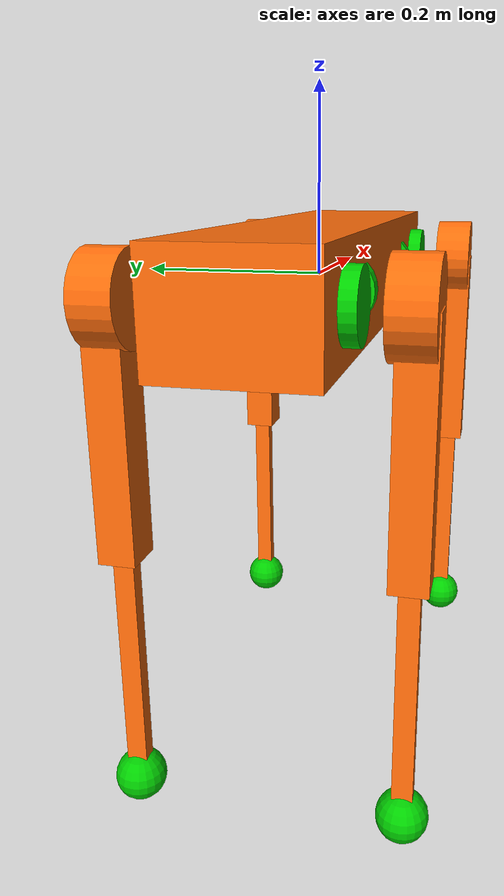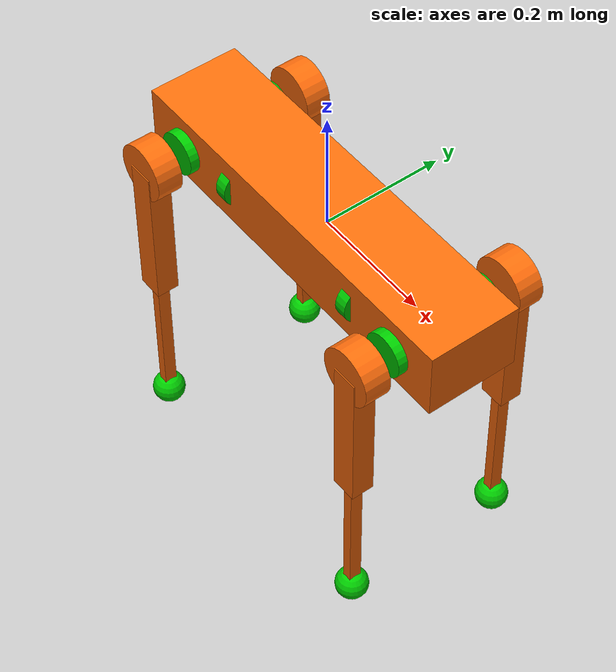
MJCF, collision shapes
<mujoco model="aliengo">
  <compiler angle="radian" meshdir="/home/george/code/umi-on-legs/mani-centric-wbc/resources/robots/aliengo_description/meshes/"/>

  <asset>
    <mesh name="trunk" file="trunk.stl"/>
    <mesh name="hip" file="hip.stl"/>
    <mesh name="thigh_mirror" file="thigh_mirror.stl"/>
    <mesh name="calf" file="calf.stl"/>
    <mesh name="thigh" file="thigh.stl"/>
  </asset>

  <worldbody>
    <geom size="0.0005 0.0005 0.0005" type="box" contype="0" conaffinity="0" group="1" density="0"/>
    <geom type="mesh" contype="0" conaffinity="0" group="1" density="0" rgba="1 0.423529 0.0392157 1" mesh="trunk"/>
    <geom size="0.3235 0.075 0.056" type="box" rgba="1 0.423529 0.0392157 1"/>
    <geom size="0.0005 0.0005 0.0005" type="box" contype="0" conaffinity="0" group="1" density="0" rgba="0.8 0 0 1"/>
    <geom size="0.0005 0.0005 0.0005" type="box" rgba="0.8 0 0 1"/>
    <geom size="0.035 0.01" pos="0.139985 -0.051 0" quat="0.707107 0 0.707107 0" type="cylinder" contype="0" conaffinity="0" group="1" density="0" rgba="0 0.8 0 1"/>
    <geom size="0.035 0.01" pos="0.139985 -0.051 0" quat="0.707107 0 0.707107 0" type="cylinder" rgba="0 0.8 0 1"/>
    <geom size="0.035 0.01" pos="0.139985 0.051 0" quat="0.707107 0 0.707107 0" type="cylinder" contype="0" conaffinity="0" group="1" density="0" rgba="0 0.8 0 1"/>
    <geom size="0.035 0.01" pos="0.139985 0.051 0" quat="0.707107 0 0.707107 0" type="cylinder" rgba="0 0.8 0 1"/>
    <geom size="0.035 0.01" pos="-0.139985 -0.051 0" quat="0.707107 0 0.707107 0" type="cylinder" contype="0" conaffinity="0" group="1" density="0" rgba="0 0.8 0 1"/>
    <geom size="0.035 0.01" pos="-0.139985 -0.051 0" quat="0.707107 0 0.707107 0" type="cylinder" rgba="0 0.8 0 1"/>
    <geom size="0.035 0.01" pos="-0.139985 0.051 0" quat="0.707107 0 0.707107 0" type="cylinder" contype="0" conaffinity="0" group="1" density="0" rgba="0 0.8 0 1"/>
    <geom size="0.035 0.01" pos="-0.139985 0.051 0" quat="0.707107 0 0.707107 0" type="cylinder" rgba="0 0.8 0 1"/>
    <body name="FR_hip" pos="0.2407 -0.051 0">
      <inertial pos="-0.0206763 -0.0161444 -1.39762e-05" quat="0.58092 0.574831 0.412459 0.402465" mass="2.139" diaginertia="0.0043606 0.0043277 0.00233028"/>
      <joint name="FR_hip_joint" pos="0 0 0" axis="1 0 0" range="-1.22173 1.22173" actuatorfrcrange="-35.278 35.278"/>
      <geom quat="0 1 0 0" type="mesh" contype="0" conaffinity="0" group="1" density="0" rgba="1 0.423529 0.0392157 1" mesh="hip"/>
      <geom size="0.046 0.0209" pos="0 -0.083 0" quat="0.707107 0.707107 0 0" type="cylinder" rgba="1 0.423529 0.0392157 1"/>
      <geom size="0.035 0.01" pos="0 -0.0298 0" quat="0.707107 0.707107 0 0" type="cylinder" contype="0" conaffinity="0" group="1" density="0" rgba="0 0.8 0 1"/>
      <geom size="0.035 0.01" pos="0 -0.0298 0" quat="0.707107 0.707107 0 0" type="cylinder" rgba="0 0.8 0 1"/>
      <body name="FR_thigh" pos="0 -0.0868 0">
        <inertial pos="-0.00464705 0.0202825 -0.039947" quat="0.994998 -0.0906147 0.0414285 -0.0071304" mass="0.771" diaginertia="0.00560787 0.004847 0.00135111"/>
        <joint name="FR_thigh_joint" pos="0 0 0" axis="0 1 0" actuatorfrcrange="-35.278 35.278"/>
        <geom type="mesh" contype="0" conaffinity="0" group="1" density="0" rgba="1 0.423529 0.0392157 1" mesh="thigh_mirror"/>
        <geom size="0.125 0.0187 0.0215" pos="0 0 -0.125" quat="0.707107 0 0.707107 0" type="box" rgba="1 0.423529 0.0392157 1"/>
        <geom size="0.035 0.01" pos="0 0.0997 0" quat="0.707107 0.707107 0 0" type="cylinder" contype="0" conaffinity="0" group="1" density="0" rgba="0 0.8 0 1"/>
        <geom size="0.035 0.01" pos="0 0.0997 0" quat="0.707107 0.707107 0 0" type="cylinder" rgba="0 0.8 0 1"/>
        <body name="FR_calf" pos="0 0 -0.25">
          <inertial pos="0.00215606 4.88427e-05 -0.166671" quat="0.708049 0.000982931 0.00120829 0.706161" mass="0.267" diaginertia="0.00269606 0.00268354 5.47714e-05"/>
          <joint name="FR_calf_joint" pos="0 0 0" axis="0 1 0" range="-2.77507 -0.645772" actuatorfrcrange="-44.4 44.4"/>
          <geom type="mesh" contype="0" conaffinity="0" group="1" density="0" rgba="1 0.423529 0.0392157 1" mesh="calf"/>
          <geom size="0.125 0.0104 0.008" pos="0 0 -0.125" quat="0.707107 0 0.707107 0" type="box" rgba="1 0.423529 0.0392157 1"/>
          <geom size="0.0165" pos="0 0 -0.25" contype="0" conaffinity="0" group="1" density="0" rgba="0 0.8 0 1"/>
          <geom size="0.0265" pos="0 0 -0.25" rgba="0 0.8 0 1"/>
        </body>
      </body>
    </body>
    <body name="FL_hip" pos="0.2407 0.051 0">
      <inertial pos="-0.0206763 0.0161444 -1.39762e-05" quat="0.402465 0.412459 0.574831 0.58092" mass="2.139" diaginertia="0.0043606 0.0043277 0.00233028"/>
      <joint name="FL_hip_joint" pos="0 0 0" axis="1 0 0" range="-1.22173 1.22173" actuatorfrcrange="-35.278 35.278"/>
      <geom type="mesh" contype="0" conaffinity="0" group="1" density="0" rgba="1 0.423529 0.0392157 1" mesh="hip"/>
      <geom size="0.046 0.0209" pos="0 0.083 0" quat="0.707107 0.707107 0 0" type="cylinder" rgba="1 0.423529 0.0392157 1"/>
      <geom size="0.035 0.01" pos="0 0.0298 0" quat="0.707107 0.707107 0 0" type="cylinder" contype="0" conaffinity="0" group="1" density="0" rgba="0 0.8 0 1"/>
      <geom size="0.035 0.01" pos="0 0.0298 0" quat="0.707107 0.707107 0 0" type="cylinder" rgba="0 0.8 0 1"/>
      <body name="FL_thigh" pos="0 0.0868 0">
        <inertial pos="-0.00464705 -0.0202825 -0.039947" quat="0.994998 0.0906147 0.0414285 0.0071304" mass="0.771" diaginertia="0.00560787 0.004847 0.00135111"/>
        <joint name="FL_thigh_joint" pos="0 0 0" axis="0 1 0" actuatorfrcrange="-35.278 35.278"/>
        <geom type="mesh" contype="0" conaffinity="0" group="1" density="0" rgba="1 0.423529 0.0392157 1" mesh="thigh"/>
        <geom size="0.125 0.0187 0.0215" pos="0 0 -0.125" quat="0.707107 0 0.707107 0" type="box" rgba="1 0.423529 0.0392157 1"/>
        <geom size="0.035 0.01" pos="0 -0.0997 0" quat="0.707107 0.707107 0 0" type="cylinder" contype="0" conaffinity="0" group="1" density="0" rgba="0 0.8 0 1"/>
        <geom size="0.035 0.01" pos="0 -0.0997 0" quat="0.707107 0.707107 0 0" type="cylinder" rgba="0 0.8 0 1"/>
        <body name="FL_calf" pos="0 0 -0.25">
          <inertial pos="0.00215606 4.88427e-05 -0.166671" quat="0.708049 0.000982931 0.00120829 0.706161" mass="0.267" diaginertia="0.00269606 0.00268354 5.47714e-05"/>
          <joint name="FL_calf_joint" pos="0 0 0" axis="0 1 0" range="-2.77507 -0.645772" actuatorfrcrange="-44.4 44.4"/>
          <geom type="mesh" contype="0" conaffinity="0" group="1" density="0" rgba="1 0.423529 0.0392157 1" mesh="calf"/>
          <geom size="0.125 0.0104 0.008" pos="0 0 -0.125" quat="0.707107 0 0.707107 0" type="box" rgba="1 0.423529 0.0392157 1"/>
          <geom size="0.0165" pos="0 0 -0.25" contype="0" conaffinity="0" group="1" density="0" rgba="0 0.8 0 1"/>
          <geom size="0.0265" pos="0 0 -0.25" rgba="0 0.8 0 1"/>
        </body>
      </body>
    </body>
    <body name="RR_hip" pos="-0.2407 -0.051 0">
      <inertial pos="0.0206763 -0.0161444 -1.39762e-05" quat="0.412459 0.402465 0.58092 0.574831" mass="2.139" diaginertia="0.0043606 0.0043277 0.00233028"/>
      <joint name="RR_hip_joint" pos="0 0 0" axis="1 0 0" range="-1.22173 1.22173" actuatorfrcrange="-35.278 35.278"/>
      <geom quat="0 0 0 -1" type="mesh" contype="0" conaffinity="0" group="1" density="0" rgba="1 0.423529 0.0392157 1" mesh="hip"/>
      <geom size="0.046 0.0209" pos="0 -0.083 0" quat="0.707107 0.707107 0 0" type="cylinder" rgba="1 0.423529 0.0392157 1"/>
      <geom size="0.035 0.01" pos="0 -0.0298 0" quat="0.707107 0.707107 0 0" type="cylinder" contype="0" conaffinity="0" group="1" density="0" rgba="0 0.8 0 1"/>
      <geom size="0.035 0.01" pos="0 -0.0298 0" quat="0.707107 0.707107 0 0" type="cylinder" rgba="0 0.8 0 1"/>
      <body name="RR_thigh" pos="0 -0.0868 0">
        <inertial pos="-0.00464705 0.0202825 -0.039947" quat="0.994998 -0.0906147 0.0414285 -0.0071304" mass="0.771" diaginertia="0.00560787 0.004847 0.00135111"/>
        <joint name="RR_thigh_joint" pos="0 0 0" axis="0 1 0" actuatorfrcrange="-35.278 35.278"/>
        <geom type="mesh" contype="0" conaffinity="0" group="1" density="0" rgba="1 0.423529 0.0392157 1" mesh="thigh_mirror"/>
        <geom size="0.125 0.0187 0.0215" pos="0 0 -0.125" quat="0.707107 0 0.707107 0" type="box" rgba="1 0.423529 0.0392157 1"/>
        <geom size="0.035 0.01" pos="0 0.0997 0" quat="0.707107 0.707107 0 0" type="cylinder" contype="0" conaffinity="0" group="1" density="0" rgba="0 0.8 0 1"/>
        <geom size="0.035 0.01" pos="0 0.0997 0" quat="0.707107 0.707107 0 0" type="cylinder" rgba="0 0.8 0 1"/>
        <body name="RR_calf" pos="0 0 -0.25">
          <inertial pos="0.00215606 4.88427e-05 -0.166671" quat="0.708049 0.000982931 0.00120829 0.706161" mass="0.267" diaginertia="0.00269606 0.00268354 5.47714e-05"/>
          <joint name="RR_calf_joint" pos="0 0 0" axis="0 1 0" range="-2.77507 -0.645772" actuatorfrcrange="-44.4 44.4"/>
          <geom type="mesh" contype="0" conaffinity="0" group="1" density="0" rgba="1 0.423529 0.0392157 1" mesh="calf"/>
          <geom size="0.125 0.0104 0.008" pos="0 0 -0.125" quat="0.707107 0 0.707107 0" type="box" rgba="1 0.423529 0.0392157 1"/>
          <geom size="0.0165" pos="0 0 -0.25" contype="0" conaffinity="0" group="1" density="0" rgba="0 0.8 0 1"/>
          <geom size="0.0265" pos="0 0 -0.25" rgba="0 0.8 0 1"/>
        </body>
      </body>
    </body>
    <body name="RL_hip" pos="-0.2407 0.051 0">
      <inertial pos="0.0206763 0.0161444 -1.39762e-05" quat="0.574831 0.58092 0.402465 0.412459" mass="2.139" diaginertia="0.0043606 0.0043277 0.00233028"/>
      <joint name="RL_hip_joint" pos="0 0 0" axis="1 0 0" range="-1.22173 1.22173" actuatorfrcrange="-35.278 35.278"/>
      <geom quat="0 0 1 0" type="mesh" contype="0" conaffinity="0" group="1" density="0" rgba="1 0.423529 0.0392157 1" mesh="hip"/>
      <geom size="0.046 0.0209" pos="0 0.083 0" quat="0.707107 0.707107 0 0" type="cylinder" rgba="1 0.423529 0.0392157 1"/>
      <geom size="0.035 0.01" pos="0 0.0298 0" quat="0.707107 0.707107 0 0" type="cylinder" contype="0" conaffinity="0" group="1" density="0" rgba="0 0.8 0 1"/>
      <geom size="0.035 0.01" pos="0 0.0298 0" quat="0.707107 0.707107 0 0" type="cylinder" rgba="0 0.8 0 1"/>
      <body name="RL_thigh" pos="0 0.0868 0">
        <inertial pos="-0.00464705 -0.0202825 -0.039947" quat="0.994998 0.0906147 0.0414285 0.0071304" mass="0.771" diaginertia="0.00560787 0.004847 0.00135111"/>
        <joint name="RL_thigh_joint" pos="0 0 0" axis="0 1 0" actuatorfrcrange="-35.278 35.278"/>
        <geom type="mesh" contype="0" conaffinity="0" group="1" density="0" rgba="1 0.423529 0.0392157 1" mesh="thigh"/>
        <geom size="0.125 0.0187 0.0215" pos="0 0 -0.125" quat="0.707107 0 0.707107 0" type="box" rgba="1 0.423529 0.0392157 1"/>
        <geom size="0.035 0.01" pos="0 -0.0997 0" quat="0.707107 0.707107 0 0" type="cylinder" contype="0" conaffinity="0" group="1" density="0" rgba="0 0.8 0 1"/>
        <geom size="0.035 0.01" pos="0 -0.0997 0" quat="0.707107 0.707107 0 0" type="cylinder" rgba="0 0.8 0 1"/>
        <body name="RL_calf" pos="0 0 -0.25">
          <inertial pos="0.00215606 4.88427e-05 -0.166671" quat="0.708049 0.000982931 0.00120829 0.706161" mass="0.267" diaginertia="0.00269606 0.00268354 5.47714e-05"/>
          <joint name="RL_calf_joint" pos="0 0 0" axis="0 1 0" range="-2.77507 -0.645772" actuatorfrcrange="-44.4 44.4"/>
          <geom type="mesh" contype="0" conaffinity="0" group="1" density="0" rgba="1 0.423529 0.0392157 1" mesh="calf"/>
          <geom size="0.125 0.0104 0.008" pos="0 0 -0.125" quat="0.707107 0 0.707107 0" type="box" rgba="1 0.423529 0.0392157 1"/>
          <geom size="0.0165" pos="0 0 -0.25" contype="0" conaffinity="0" group="1" density="0" rgba="0 0.8 0 1"/>
          <geom size="0.0265" pos="0 0 -0.25" rgba="0 0.8 0 1"/>
        </body>
      </body>
    </body>
  </worldbody>
</mujoco>
